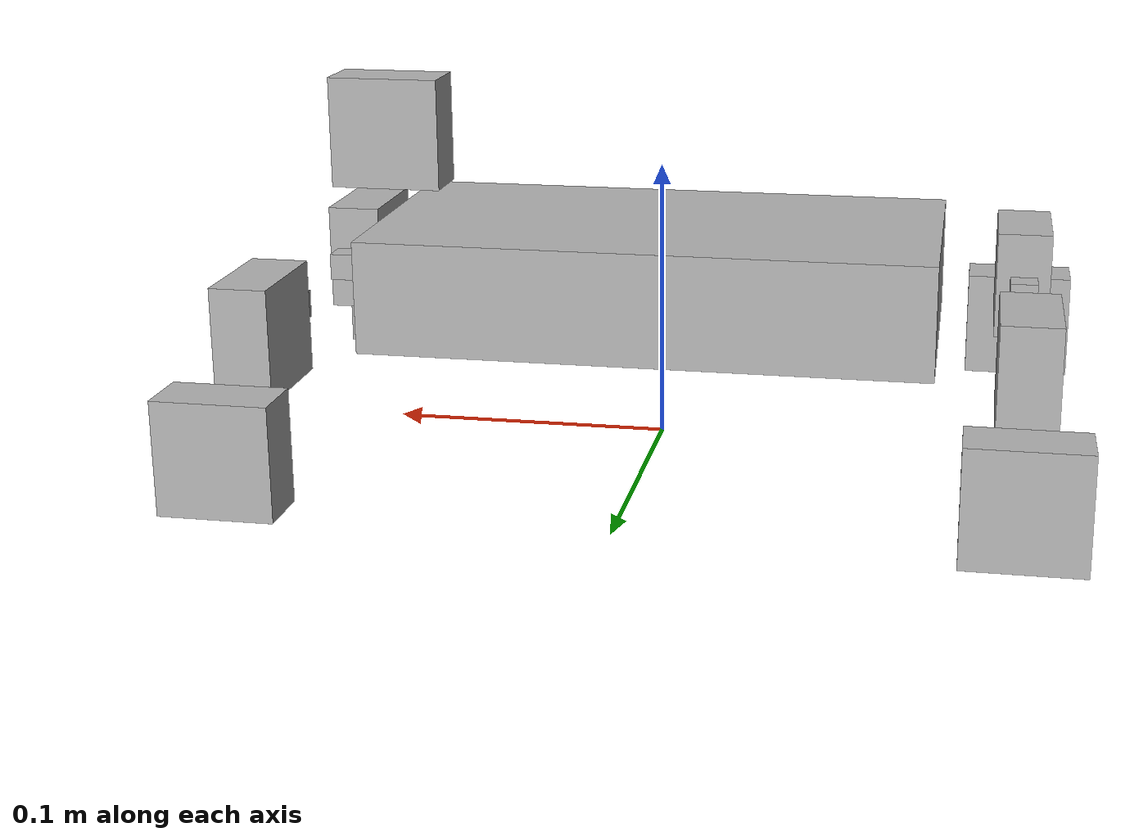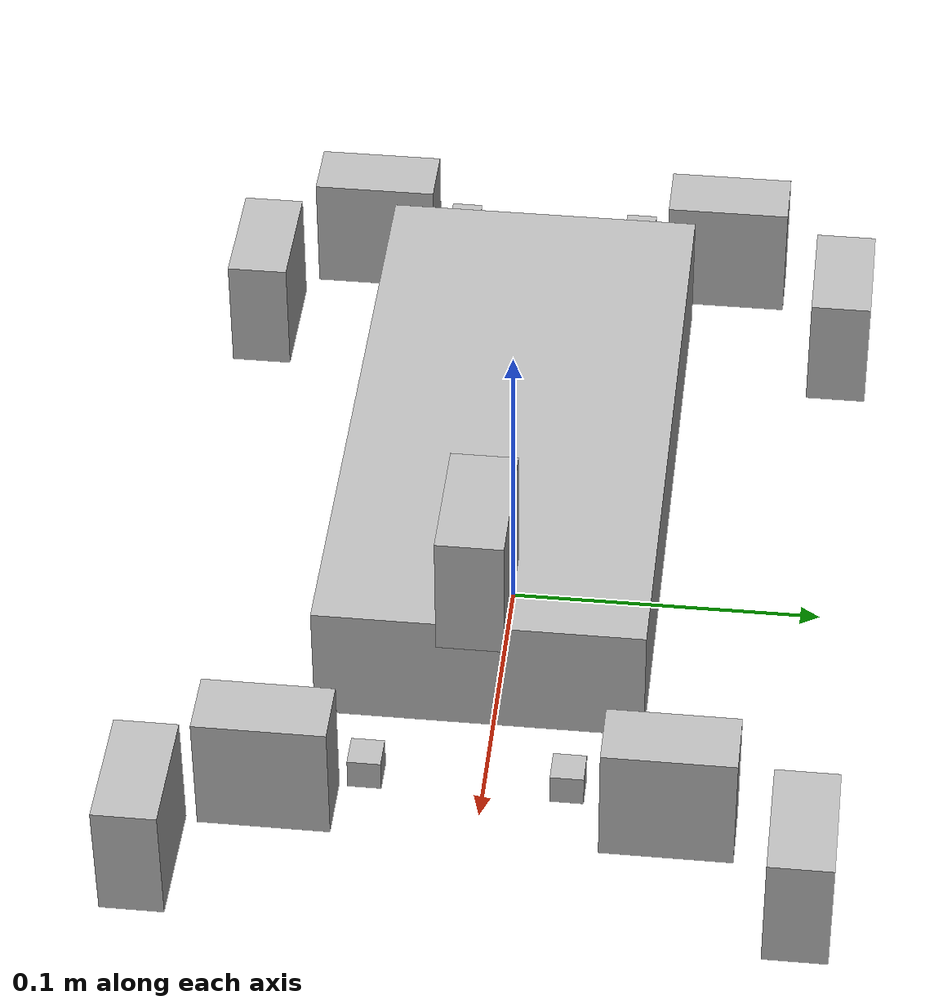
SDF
<?xml version='1.0'?>
<sdf version='1.5'>
  <model name="fourlegs">
    <static>false</static>
		<self_collide>false</self_collide>

      <link name='BODY'>
        <pose>0 0 0.06 0 0 0</pose>
				<inertial>
				  <mass>2</mass>
					<inertia>
					  <ixx>0.001933325</ixx>
					  <ixy>0</ixy>
					  <ixz>0</ixz>
					  <iyy>0.006933325</iyy>
					  <iyz>0</iyz>
					  <izz>0.008333325</izz>
					</inertia>
				</inertial>
        <collision name="collision">
          <geometry>
            <box><size>0.2 0.1 0.04</size></box>
          </geometry>
          <surface>
            <friction>
              <ode>
                <mu>1</mu>
                <mu2>1</mu2>
                <slip1>0</slip1>
                <slip2>0</slip2>
              </ode>
            </friction>
          </surface>
        </collision>
        <visual name="visual">
          <geometry>
            <box><size>0.2 0.1 0.04</size></box>
          </geometry>
        </visual>
      </link>

      <link name='NECK'>
        <pose>0.1 0 0.11 0 0 0</pose>
				<inertial>
				  <mass>0.2</mass>
					<inertia>
					  <ixx>0.000034133</ixx>
					  <ixy>0</ixy>
					  <ixz>0</ixz>
					  <iyy>0.000054613</iyy>
					  <iyz>0</iyz>
					  <izz>0.000034133</izz>
					</inertia>
				</inertial>
        <collision name="collision">
          <geometry>
            <box><size>0.04 0.02 0.04</size></box>
          </geometry>
          <surface>
            <friction>
              <ode>
                <mu>1</mu>
                <mu2>1</mu2>
                <slip1>0</slip1>
                <slip2>0</slip2>
              </ode>
            </friction>
          </surface>
        </collision>
        <visual name="visual">
          <geometry>
            <box><size>0.04 0.02 0.04</size></box>
          </geometry>
        </visual>
      </link>

      <joint type="revolute" name="J_NECK">
        <pose>-0.02 0 -0.03 0 0 0</pose>
        <child>NECK</child>
        <parent>BODY</parent>
        <axis>
          <xyz>0 0 1</xyz>
        </axis>
      </joint>

      <link name='FR0'>
        <pose>0.13 -0.03 0.05 0 0 0</pose>
				<inertial>
				  <mass>0.01</mass>
					<inertia>
					  <ixx>0.000000175</ixx>
					  <ixy>0</ixy>
					  <ixz>0</ixz>
					  <iyy>0.000000175</iyy>
					  <iyz>0</iyz>
					  <izz>0.000000175</izz>
					</inertia>
				</inertial>
        <collision name="collision">
          <geometry>
            <box><size>0.01 0.01 0.01</size></box>
          </geometry>
          <surface>
            <friction>
              <ode>
                <mu>1</mu>
                <mu2>1</mu2>
                <slip1>0</slip1>
                <slip2>0</slip2>
              </ode>
            </friction>
          </surface>
        </collision>
        <visual name="visual">
          <geometry>
            <box><size>0.01 0.01 0.01</size></box>
          </geometry>
        </visual>
      </link>

			<joint type="revolute" name="J_FR_B20">
				<pose>0 0 0 0 0 0</pose>
				<child>FR0</child>
				<parent>BODY</parent>
				<axis>
					<xyz>-1 0 0</xyz>
          <dynamics>
            <damping>3</damping>
          </dynamics>
				</axis>
        <physics>
          <ode>
            <cfm_damping>1</cfm_damping>
            <implicit_spring_damper>1</implicit_spring_damper>
          </ode>
        </physics>
			</joint>

      <link name='FR1'>
        <pose>0.13 -0.06 0.05 0 0 0</pose>
				<inertial>
				  <mass>0.2</mass>
					<inertia>
					  <ixx>0.000054613</ixx>
					  <ixy>0</ixy>
					  <ixz>0</ixz>
					  <iyy>0.000034133</iyy>
					  <iyz>0</iyz>
					  <izz>0.000034133</izz>
					</inertia>
				</inertial>
        <collision name="collision">
          <geometry>
            <box><size>0.02 0.04 0.04</size></box>
          </geometry>
          <surface>
            <friction>
              <ode>
                <mu>1</mu>
                <mu2>1</mu2>
                <slip1>0</slip1>
                <slip2>0</slip2>
              </ode>
            </friction>
          </surface>
        </collision>
        <visual name="visual">
          <geometry>
            <box><size>0.02 0.04 0.04</size></box>
          </geometry>
        </visual>
      </link>

			<joint type="revolute" name="J_FR_021">
				<pose>0 0 0 0 0 0</pose>
				<child>FR0</child>
				<parent>FR1</parent>
				<axis>
					<xyz>0 0 -1</xyz>
          <dynamics>
            <damping>3</damping>
          </dynamics>
				</axis>
        <physics>
          <ode>
            <cfm_damping>1</cfm_damping>
            <implicit_spring_damper>1</implicit_spring_damper>
          </ode>
        </physics>
			</joint>

      <link name='FR2'>
        <pose>0.13 -0.1 0.02 0 0 0</pose>
				<inertial>
				  <mass>0.2</mass>
					<inertia>
					  <ixx>0.000034133</ixx>
					  <ixy>0</ixy>
					  <ixz>0</ixz>
					  <iyy>0.000054613</iyy>
					  <iyz>0</iyz>
					  <izz>0.000034133</izz>
					</inertia>
				</inertial>
        <collision name="collision">
          <geometry>
            <box><size>0.04 0.02 0.04</size></box>
          </geometry>
          <surface>
            <friction>
              <ode>
                <mu>1</mu>
                <mu2>1</mu2>
                <slip1>0</slip1>
                <slip2>0</slip2>
              </ode>
            </friction>
          </surface>
        </collision>
        <visual name="visual">
          <geometry>
            <box><size>0.04 0.02 0.04</size></box>
          </geometry>
        </visual>
      </link>

			<joint type="revolute" name="J_FR_122">
				<pose>0 0 0.03 0 0 0</pose>
				<child>FR2</child>
				<parent>FR1</parent>
				<axis>
					<xyz>-1 0 0</xyz>
          <dynamics>
            <damping>3</damping>
          </dynamics>
				</axis>
        <physics>
          <ode>
            <cfm_damping>1</cfm_damping>
            <implicit_spring_damper>1</implicit_spring_damper>
          </ode>
        </physics>
			</joint>

      <link name='FL0'>
        <pose>0.13 0.03 0.05 0 0 0</pose>
				<inertial>
				  <mass>0.01</mass>
					<inertia>
					  <ixx>0.000000175</ixx>
					  <ixy>0</ixy>
					  <ixz>0</ixz>
					  <iyy>0.000000175</iyy>
					  <iyz>0</iyz>
					  <izz>0.000000175</izz>
					</inertia>
				</inertial>
        <collision name="collision">
          <geometry>
            <box><size>0.01 0.01 0.01</size></box>
          </geometry>
          <surface>
            <friction>
              <ode>
                <mu>1</mu>
                <mu2>1</mu2>
                <slip1>0</slip1>
                <slip2>0</slip2>
              </ode>
            </friction>
          </surface>
        </collision>
        <visual name="visual">
          <geometry>
            <box><size>0.01 0.01 0.01</size></box>
          </geometry>
        </visual>
      </link>

			<joint type="revolute" name="J_FL_B20">
				<pose>0 0 0 0 0 0</pose>
				<child>FL0</child>
				<parent>BODY</parent>
				<axis>
					<xyz>1 0 0</xyz>
          <dynamics>
            <damping>3</damping>
          </dynamics>
				</axis>
        <physics>
          <ode>
            <cfm_damping>1</cfm_damping>
            <implicit_spring_damper>1</implicit_spring_damper>
          </ode>
        </physics>
			</joint>

      <link name='FL1'>
        <pose>0.13 0.06 0.05 0 0 0</pose>
				<inertial>
				  <mass>0.2</mass>
					<inertia>
					  <ixx>0.000054613</ixx>
					  <ixy>0</ixy>
					  <ixz>0</ixz>
					  <iyy>0.000034133</iyy>
					  <iyz>0</iyz>
					  <izz>0.000034133</izz>
					</inertia>
				</inertial>
        <collision name="collision">
          <geometry>
            <box><size>0.02 0.04 0.04</size></box>
          </geometry>
          <surface>
            <friction>
              <ode>
                <mu>1</mu>
                <mu2>1</mu2>
                <slip1>0</slip1>
                <slip2>0</slip2>
              </ode>
            </friction>
          </surface>
        </collision>
        <visual name="visual">
          <geometry>
            <box><size>0.02 0.04 0.04</size></box>
          </geometry>
        </visual>
      </link>

			<joint type="revolute" name="J_FL_021">
				<pose>0 0 0 0 0 0</pose>
				<child>FL0</child>
				<parent>FL1</parent>
				<axis>
					<xyz>0 0 1</xyz>
          <dynamics>
            <damping>3</damping>
          </dynamics>
				</axis>
        <physics>
          <ode>
            <cfm_damping>1</cfm_damping>
            <implicit_spring_damper>1</implicit_spring_damper>
          </ode>
        </physics>
			</joint>

      <link name='FL2'>
        <pose>0.13 0.1 0.02 0 0 0</pose>
				<inertial>
				  <mass>0.2</mass>
					<inertia>
					  <ixx>0.000034133</ixx>
					  <ixy>0</ixy>
					  <ixz>0</ixz>
					  <iyy>0.000054613</iyy>
					  <iyz>0</iyz>
					  <izz>0.000034133</izz>
					</inertia>
				</inertial>
        <collision name="collision">
          <geometry>
            <box><size>0.04 0.02 0.04</size></box>
          </geometry>
          <surface>
            <friction>
              <ode>
                <mu>1</mu>
                <mu2>1</mu2>
                <slip1>0</slip1>
                <slip2>0</slip2>
              </ode>
            </friction>
          </surface>
        </collision>
        <visual name="visual">
          <geometry>
            <box><size>0.04 0.02 0.04</size></box>
          </geometry>
        </visual>
      </link>

			<joint type="revolute" name="J_FL_122">
				<pose>0 0 0.03 0 0 0</pose>
				<child>FL2</child>
				<parent>FL1</parent>
				<axis>
					<xyz>1 0 0</xyz>
          <dynamics>
            <damping>3</damping>
          </dynamics>
				</axis>
        <physics>
          <ode>
            <cfm_damping>1</cfm_damping>
            <implicit_spring_damper>1</implicit_spring_damper>
          </ode>
        </physics>
			</joint>

      <link name='RR0'>
        <pose>-0.13 -0.03 0.05 0 0 0</pose>
				<inertial>
				  <mass>0.01</mass>
					<inertia>
					  <ixx>0.000000175</ixx>
					  <ixy>0</ixy>
					  <ixz>0</ixz>
					  <iyy>0.000000175</iyy>
					  <iyz>0</iyz>
					  <izz>0.000000175</izz>
					</inertia>
				</inertial>
        <collision name="collision">
          <geometry>
            <box><size>0.01 0.01 0.01</size></box>
          </geometry>
          <surface>
            <friction>
              <ode>
                <mu>1</mu>
                <mu2>1</mu2>
                <slip1>0</slip1>
                <slip2>0</slip2>
              </ode>
            </friction>
          </surface>
        </collision>
        <visual name="visual">
          <geometry>
            <box><size>0.01 0.01 0.01</size></box>
          </geometry>
        </visual>
      </link>

			<joint type="revolute" name="J_RR_B20">
				<pose>0 0 0 0 0 0</pose>
				<child>RR0</child>
				<parent>BODY</parent>
				<axis>
					<xyz>-1 0 0</xyz>
          <dynamics>
            <damping>3</damping>
          </dynamics>
				</axis>
        <physics>
          <ode>
            <cfm_damping>1</cfm_damping>
            <implicit_spring_damper>1</implicit_spring_damper>
          </ode>
        </physics>
			</joint>

      <link name='RR1'>
        <pose>-0.13 -0.06 0.05 0 0 0</pose>
				<inertial>
				  <mass>0.2</mass>
					<inertia>
					  <ixx>0.000054613</ixx>
					  <ixy>0</ixy>
					  <ixz>0</ixz>
					  <iyy>0.000034133</iyy>
					  <iyz>0</iyz>
					  <izz>0.000034133</izz>
					</inertia>
				</inertial>
        <collision name="collision">
          <geometry>
            <box><size>0.02 0.04 0.04</size></box>
          </geometry>
          <surface>
            <friction>
              <ode>
                <mu>1</mu>
                <mu2>1</mu2>
                <slip1>0</slip1>
                <slip2>0</slip2>
              </ode>
            </friction>
          </surface>
        </collision>
        <visual name="visual">
          <geometry>
            <box><size>0.02 0.04 0.04</size></box>
          </geometry>
        </visual>
      </link>

			<joint type="revolute" name="J_RR_021">
				<pose>0 0 0 0 0 0</pose>
				<child>RR0</child>
				<parent>RR1</parent>
				<axis>
					<xyz>0 0 1</xyz>
          <dynamics>
            <damping>3</damping>
          </dynamics>
				</axis>
        <physics>
          <ode>
            <cfm_damping>1</cfm_damping>
            <implicit_spring_damper>1</implicit_spring_damper>
          </ode>
        </physics>
			</joint>

      <link name='RR2'>
        <pose>-0.13 -0.1 0.02 0 0 0</pose>
				<inertial>
				  <mass>0.2</mass>
					<inertia>
					  <ixx>0.000034133</ixx>
					  <ixy>0</ixy>
					  <ixz>0</ixz>
					  <iyy>0.000054613</iyy>
					  <iyz>0</iyz>
					  <izz>0.000034133</izz>
					</inertia>
				</inertial>
        <collision name="collision">
          <geometry>
            <box><size>0.04 0.02 0.04</size></box>
          </geometry>
          <surface>
            <friction>
              <ode>
                <mu>1</mu>
                <mu2>1</mu2>
                <slip1>0</slip1>
                <slip2>0</slip2>
              </ode>
            </friction>
          </surface>
        </collision>
        <visual name="visual">
          <geometry>
            <box><size>0.04 0.02 0.04</size></box>
          </geometry>
        </visual>
      </link>

			<joint type="revolute" name="J_RR_122">
				<pose>0 0 0.03 0 0 0</pose>
				<child>RR2</child>
				<parent>RR1</parent>
				<axis>
					<xyz>-1 0 0</xyz>
          <dynamics>
            <damping>3</damping>
          </dynamics>
				</axis>
        <physics>
          <ode>
            <cfm_damping>1</cfm_damping>
            <implicit_spring_damper>1</implicit_spring_damper>
          </ode>
        </physics>
			</joint>

      <link name='RL0'>
        <pose>-0.13 0.03 0.05 0 0 0</pose>
				<inertial>
				  <mass>0.01</mass>
					<inertia>
					  <ixx>0.000000175</ixx>
					  <ixy>0</ixy>
					  <ixz>0</ixz>
					  <iyy>0.000000175</iyy>
					  <iyz>0</iyz>
					  <izz>0.000000175</izz>
					</inertia>
				</inertial>
        <collision name="collision">
          <geometry>
            <box><size>0.01 0.01 0.01</size></box>
          </geometry>
          <surface>
            <friction>
              <ode>
                <mu>1</mu>
                <mu2>1</mu2>
                <slip1>0</slip1>
                <slip2>0</slip2>
              </ode>
            </friction>
          </surface>
        </collision>
        <visual name="visual">
          <geometry>
            <box><size>0.01 0.01 0.01</size></box>
          </geometry>
        </visual>
      </link>

			<joint type="revolute" name="J_RL_B20">
				<pose>0 0 0 0 0 0</pose>
				<child>RL0</child>
				<parent>BODY</parent>
				<axis>
					<xyz>1 0 0</xyz>
          <dynamics>
            <damping>3</damping>
          </dynamics>
				</axis>
        <physics>
          <ode>
            <cfm_damping>1</cfm_damping>
            <implicit_spring_damper>1</implicit_spring_damper>
          </ode>
        </physics>
			</joint>

      <link name='RL1'>
        <pose>-0.13 0.06 0.05 0 0 0</pose>
				<inertial>
				  <mass>0.2</mass>
					<inertia>
					  <ixx>0.000054613</ixx>
					  <ixy>0</ixy>
					  <ixz>0</ixz>
					  <iyy>0.000034133</iyy>
					  <iyz>0</iyz>
					  <izz>0.000034133</izz>
					</inertia>
				</inertial>
        <collision name="collision">
          <geometry>
            <box><size>0.02 0.04 0.04</size></box>
          </geometry>
          <surface>
            <friction>
              <ode>
                <mu>1</mu>
                <mu2>1</mu2>
                <slip1>0</slip1>
                <slip2>0</slip2>
              </ode>
            </friction>
          </surface>
        </collision>
        <visual name="visual">
          <geometry>
            <box><size>0.02 0.04 0.04</size></box>
          </geometry>
        </visual>
      </link>

			<joint type="revolute" name="J_RL_021">
				<pose>0 0 0 0 0 0</pose>
				<child>RL0</child>
				<parent>RL1</parent>
				<axis>
					<xyz>0 0 -1</xyz>
          <dynamics>
            <damping>3</damping>
          </dynamics>
				</axis>
        <physics>
          <ode>
            <cfm_damping>1</cfm_damping>
            <implicit_spring_damper>1</implicit_spring_damper>
          </ode>
        </physics>
			</joint>

      <link name='RL2'>
        <pose>-0.13 0.1 0.02 0 0 0</pose>
				<inertial>
				  <mass>0.2</mass>
					<inertia>
					  <ixx>0.000034133</ixx>
					  <ixy>0</ixy>
					  <ixz>0</ixz>
					  <iyy>0.000054613</iyy>
					  <iyz>0</iyz>
					  <izz>0.000034133</izz>
					</inertia>
				</inertial>
        <collision name="collision">
          <geometry>
            <box><size>0.04 0.02 0.04</size></box>
          </geometry>
          <surface>
            <friction>
              <ode>
                <mu>1</mu>
                <mu2>1</mu2>
                <slip1>0</slip1>
                <slip2>0</slip2>
              </ode>
            </friction>
          </surface>
        </collision>
        <visual name="visual">
          <geometry>
            <box><size>0.04 0.02 0.04</size></box>
          </geometry>
        </visual>
      </link>

			<joint type="revolute" name="J_RL_122">
				<pose>0 0 0.03 0 0 0</pose>
				<child>RL2</child>
				<parent>RL1</parent>
				<axis>
					<xyz>1 0 0</xyz>
          <dynamics>
            <damping>3</damping>
          </dynamics>
				</axis>
        <physics>
          <ode>
            <cfm_damping>1</cfm_damping>
            <implicit_spring_damper>1</implicit_spring_damper>
          </ode>
        </physics>
			</joint>
  </model>
</sdf>
